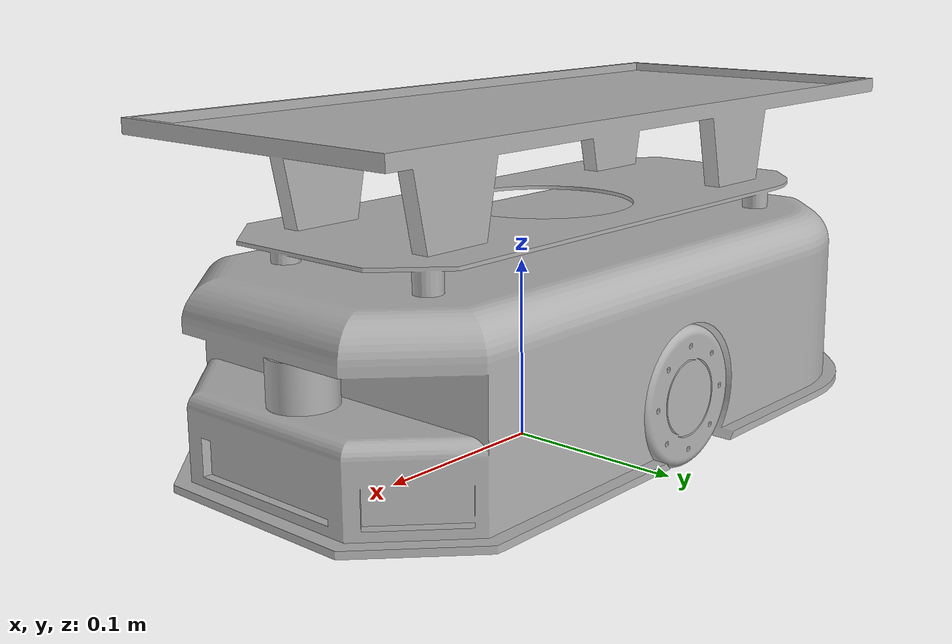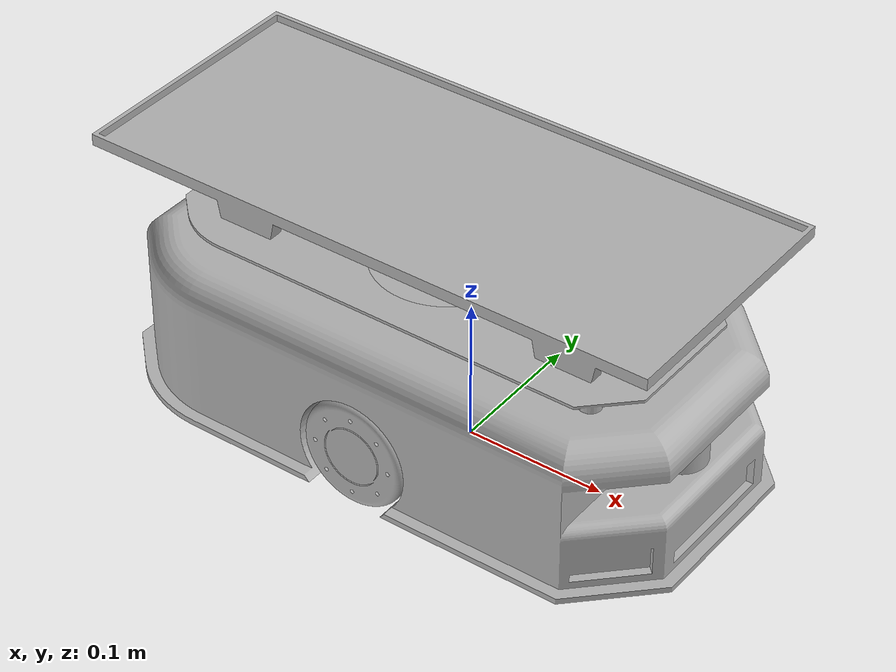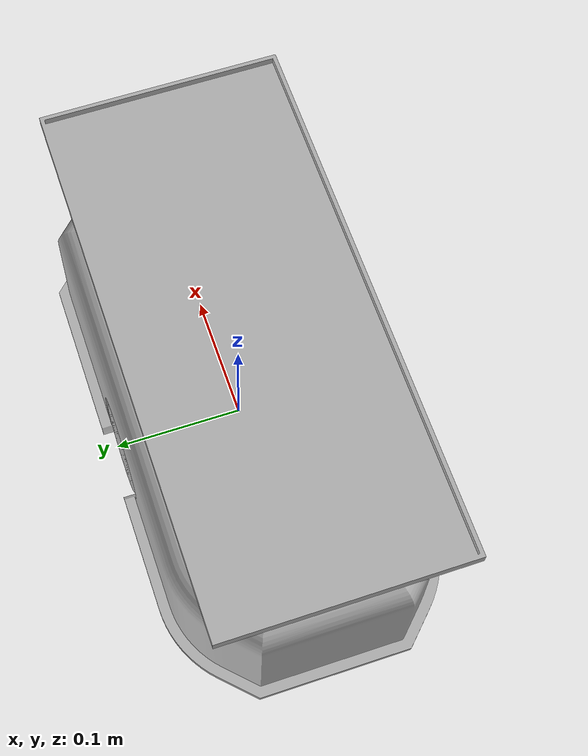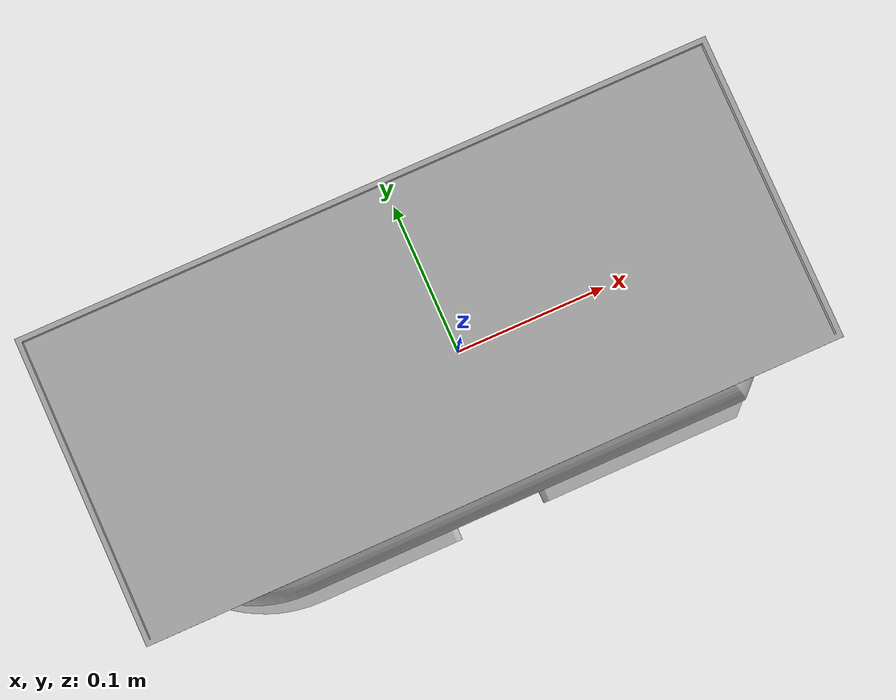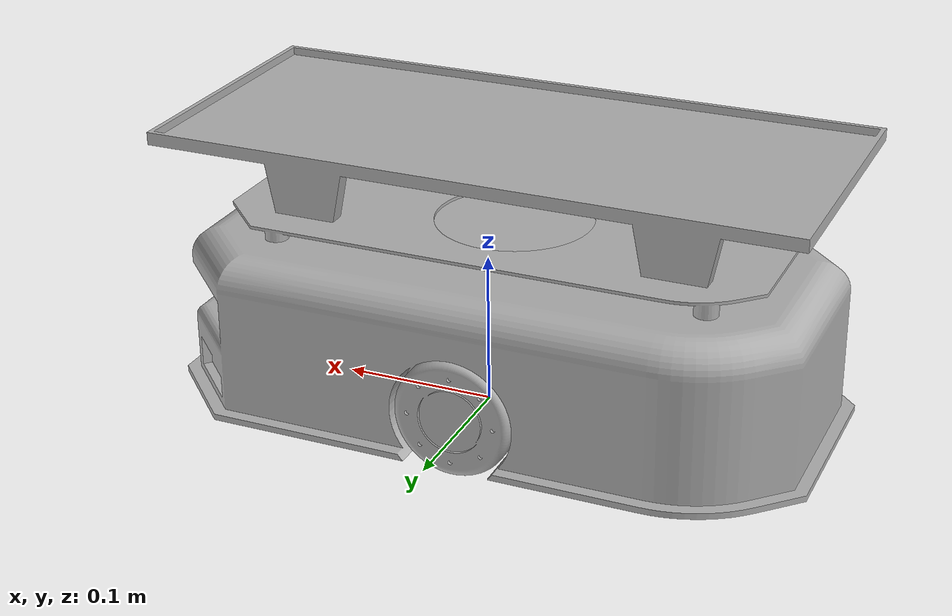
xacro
<?xml version="1.0" ?>
<robot name="amr" xmlns:xacro="http://www.ros.org/wiki/xacro">

<xacro:include filename="$(find amr_description)/urdf/materials.xacro" />
<xacro:include filename="$(find amr_description)/urdf/amr.trans" />
<xacro:include filename="$(find amr_description)/urdf/amr.gazebo" />

  <link name="base_footprint">
  </link>

    <!-- BASE LINK -->
    <joint name="base_footprint_joint" type="fixed">
        <parent link="base_footprint"/>
        <child link="base_link"/>
        <origin xyz="0.0 0.0 0.0" rpy="0.0 0.0 0.0"/>
    </joint>

<link name="base_link">
  <inertial>
    <origin xyz="-0.022903586756840077 -8.585965872614856e-05 0.06068484307006008" rpy="0 0 0"/>
    <mass value="57.754617991982215"/>
    <inertia ixx="0.22428" iyy="0.737627" izz="0.85712" ixy="5e-05" iyz="1.7e-05" ixz="0.002624"/>
  </inertial>
  <visual>
    <origin xyz="0 0 0" rpy="0 0 0"/>
    <geometry>
      <mesh filename="file://$(find amr_description)/meshes/base_link.stl" scale="0.001 0.001 0.001"/>
    </geometry>
    <material name="silver"/>
  </visual>
  <collision>
    <origin xyz="0 0 0" rpy="0 0 0"/>
    <geometry>
      <mesh filename="file://$(find amr_description)/meshes/base_link.stl" scale="0.001 0.001 0.001"/>
    </geometry>
  </collision>
</link>

<link name="stand_1">
  <inertial>
    <origin xyz="-0.1407316132710241 -0.04989790589762815 0.056176786804443116" rpy="0 0 0"/>
    <mass value="3.4017239840903604"/>
    <inertia ixx="0.010417" iyy="0.049523" izz="0.056376" ixy="-4.9e-05" iyz="1.9e-05" ixz="0.000128"/>
  </inertial>
  <visual>
    <origin xyz="-0.122112 -0.04992 -0.108" rpy="0 0 0"/>
    <geometry>
      <mesh filename="file://$(find amr_description)/meshes/stand_1.stl" scale="0.001 0.001 0.001"/>
    </geometry>
    <material name="silver"/>
  </visual>
  <collision>
    <origin xyz="-0.122112 -0.04992 -0.108" rpy="0 0 0"/>
    <geometry>
      <mesh filename="file://$(find amr_description)/meshes/stand_1.stl" scale="0.001 0.001 0.001"/>
    </geometry>
  </collision>
</link>

<link name="left_wheel_1">
  <inertial>
    <origin xyz="2.442484340441087e-07 0.009838965876692293 6.938893903907228e-18" rpy="0 0 0"/>
    <mass value="0.6995541013126898"/>
    <inertia ixx="0.000272" iyy="0.000499" izz="0.000272" ixy="0.0" iyz="0.0" ixz="-0.0"/>
  </inertial>
  <visual>
    <origin xyz="0.017888 -0.07992 -0.038" rpy="0 0 0"/>
    <geometry>
      <mesh filename="file://$(find amr_description)/meshes/left_wheel_1.stl" scale="0.001 0.001 0.001"/>
    </geometry>
    <material name="silver"/>
  </visual>
  <collision>
    <origin xyz="0.017888 -0.07992 -0.038" rpy="0 0 0"/>
    <geometry>
      <mesh filename="file://$(find amr_description)/meshes/left_wheel_1.stl" scale="0.001 0.001 0.001"/>
    </geometry>
  </collision>
</link>

<link name="right_wheel_1">
  <inertial>
    <origin xyz="2.4424843392267803e-07 -0.009838675682573725 -6.938893903907228e-18" rpy="0 0 0"/>
    <mass value="0.6995541013126898"/>
    <inertia ixx="0.000272" iyy="0.000499" izz="0.000272" ixy="-0.0" iyz="0.0" ixz="-0.0"/>
  </inertial>
  <visual>
    <origin xyz="0.017888 0.08008 -0.038" rpy="0 0 0"/>
    <geometry>
      <mesh filename="file://$(find amr_description)/meshes/right_wheel_1.stl" scale="0.001 0.001 0.001"/>
    </geometry>
    <material name="silver"/>
  </visual>
  <collision>
    <origin xyz="0.017888 0.08008 -0.038" rpy="0 0 0"/>
    <geometry>
      <mesh filename="file://$(find amr_description)/meshes/right_wheel_1.stl" scale="0.001 0.001 0.001"/>
    </geometry>
  </collision>
</link>

<link name="lidar_1">
  <inertial>
    <origin xyz="1.5728070276721517e-07 1.4509705914942013e-07 0.012500000000000018" rpy="0 0 0"/>
    <mass value="0.18881462721926787"/>
    <inertia ixx="2.4e-05" iyy="2.4e-05" izz="2.9e-05" ixy="-0.0" iyz="-0.0" ixz="-0.0"/>
  </inertial>
  <visual>
    <origin xyz="-0.155849 8e-05 -0.058" rpy="0 0 0"/>
    <geometry>
      <mesh filename="file://$(find amr_description)/meshes/lidar_1.stl" scale="0.001 0.001 0.001"/>
    </geometry>
    <material name="silver"/>
  </visual>
  <collision>
    <origin xyz="-0.155849 8e-05 -0.058" rpy="0 0 0"/>
    <geometry>
      <mesh filename="file://$(find amr_description)/meshes/lidar_1.stl" scale="0.001 0.001 0.001"/>
    </geometry>
  </collision>
</link>

  <link name="imu_link">
  </link>

  <joint
    name="imujoint"
    type="fixed">
    <origin
      xyz="0 0 0.2"
      rpy="0 0 0" />
    <parent
      link="base_link" />
    <child
      link="imu_link" />
    <axis
      xyz="0 0 0" />
  </joint>

<joint name="stand_joint" type="fixed">
  <origin xyz="0.122112 0.04992 0.108" rpy="0 0 0"/>
  <parent link="base_link"/>
  <child link="stand_1"/>
</joint>

<joint name="left_wheel_joint" type="continuous">
  <origin xyz="-0.017888 0.07992 0.038" rpy="0 0 0"/>
  <parent link="base_link"/>
  <child link="left_wheel_1"/>
  <axis xyz="0.0 1.0 0.0"/>
</joint>

<joint name="right_wheel_joint" type="continuous">
  <origin xyz="-0.017888 -0.08008 0.038" rpy="0 0 0"/>
  <parent link="base_link"/>
  <child link="right_wheel_1"/>
  <axis xyz="-0.0 1.0 0.0"/>
</joint>

<joint name="lidar_joint" type="fixed">
  <origin xyz="0.155849 -8e-05 0.058" rpy="0 0 0"/>
  <parent link="base_link"/>
  <child link="lidar_1"/>
</joint>

</robot>

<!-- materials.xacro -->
<robot name="amr" xmlns:xacro="http://www.ros.org/wiki/xacro" >

<material name="silver">
  <color rgba="0.700 0.700 0.700 1.000"/>
</material>

</robot>

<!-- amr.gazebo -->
<robot name="amr" xmlns:xacro="http://www.ros.org/wiki/xacro" >

<xacro:property name="body_color" value="Gazebo/Black" />
<xacro:property name="body_color1" value="Gazebo/White" />

<gazebo>
  <plugin name="control" filename="libgazebo_ros_control.so"/>
</gazebo>
<gazebo reference="base_link1">
  <material>${body_color}</material>
  <mu1>0.1</mu1>
  <mu2>0.1</mu2>
  <self_collide>true</self_collide>
  <gravity>true</gravity>
</gazebo>

<gazebo reference="stand_1">
  <material>${body_color}</material>
  <mu1>0.2</mu1>
  <mu2>0.2</mu2>
  <self_collide>true</self_collide>
</gazebo>

<gazebo reference="left_wheel_1">
  <material>${body_color}</material>
  <mu1>1500</mu1>
  <mu2>1500</mu2>
  <self_collide>true</self_collide>
</gazebo>

<gazebo reference="right_wheel_1">
  <material>${body_color}</material>
  <mu1>1500</mu1>
  <mu2>1500</mu2>
  <self_collide>true</self_collide>
</gazebo>

<gazebo reference="lidar_1">
  <material>${body_color}</material>
  <mu1>0.1</mu1>
  <mu2>0.1</mu2>
  <self_collide>true</self_collide>
</gazebo>

  <gazebo>
    <plugin name="wheel_drive_controller" filename="libgazebo_ros_diff_drive.so">

      <left_joint>left_wheel_joint</left_joint>
      <right_joint>right_wheel_joint</right_joint>

      <!-- kinematics -->
      <wheel_separation>0.16</wheel_separation>
      <wheel_diameter>0.076</wheel_diameter>
      <max_wheel_torque>100</max_wheel_torque>
      <max_wheel_acceleration>10.0</max_wheel_acceleration>

      <!-- odometry  -->
      <odometry_source>1</odometry_source>
      <odometry_frame>odom</odometry_frame>
      <robot_base_frame>base_footprint</robot_base_frame>

      <!-- topic & re remappings -->
      <ros>
        <namespace>amr</namespace>
        <remapping>/cmd_vel:=cmd_vel</remapping>
        <remapping>/odom:=odom</remapping>
      </ros>

      <publish_odom>true</publish_odom>
      <publish_odom_tf>true</publish_odom_tf>
      <publish_wheel_tf>true</publish_wheel_tf>
      <update_rate>100.0</update_rate>
    </plugin>
  </gazebo>

    <gazebo reference="lidar_1">
        <sensor name="laser" type="ray">
            <pose> 0 0 0 0 0 0 </pose>
            <visualize>false</visualize>
            <update_rate>30</update_rate>
            <ray>
                <scan>
                    <horizontal>
                        <samples>720</samples>
                        <min_angle>-1.57</min_angle>
                        <max_angle>1.57</max_angle>
                    </horizontal>
                </scan>
                <range>
                    <min>0.2</min>
                    <max>4</max>
                </range>
            </ray>
            <plugin name="laser_controller" filename="libgazebo_ros_ray_sensor.so">
                <ros>
                    <remapping>~/out:=amr/scan</remapping>
                </ros>
                <output_type>sensor_msgs/LaserScan</output_type>
                <frame_name>lidar_1</frame_name>
            </plugin>
        </sensor>
    </gazebo>

   <gazebo reference="imu_link">
    <gravity>true</gravity>
    <sensor name="imu_sensor" type="imu">
      <always_on>true</always_on>
      <update_rate>100</update_rate>
      <visualize>true</visualize>
      <topic>__default_topic__</topic>
      <plugin filename="libgazebo_ros_imu_sensor.so" name="imu_plugin">
        <ros>
          <remapping>~/out:=/imu</remapping>
        </ros>
        <bodyName>imu_link</bodyName>
        <updateRateHZ>10.0</updateRateHZ>
        <gaussianNoise>0.0</gaussianNoise>
        <xyzOffset>0 0 0</xyzOffset>
        <rpyOffset>0 0 0</rpyOffset>
        <frameName>imu_link</frameName>
        <initial_orientation_as_reference>false</initial_orientation_as_reference>
      </plugin>
      <pose>0 0 0 0 0 0</pose>
    </sensor>
  </gazebo>

</robot>
